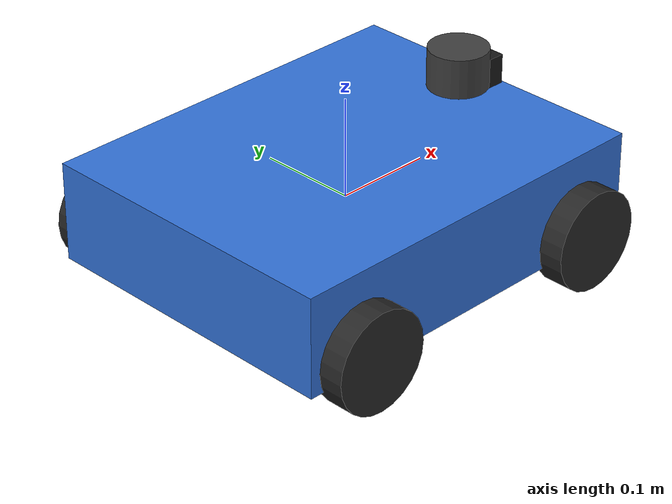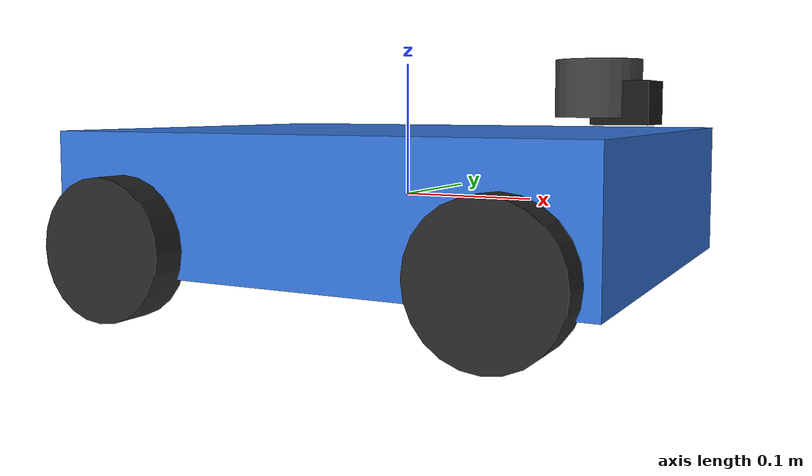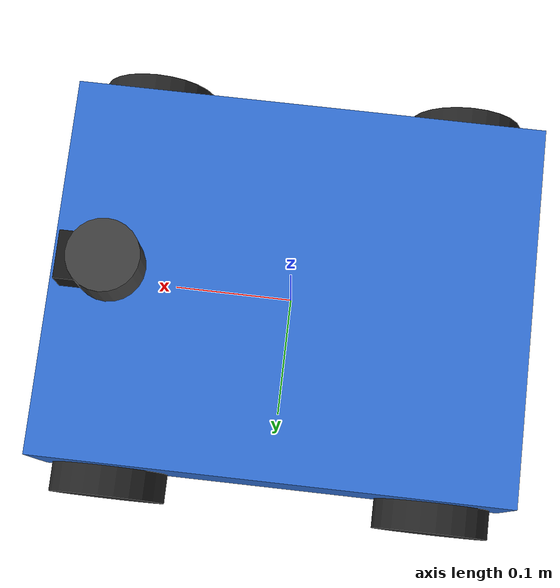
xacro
<?xml version="1.0"?>
<robot xmlns:xacro="http://www.ros.org/wiki/xacro"
       name="my_ros_car">

    <!--                     全局参数                              -->

    <!-- 底盘尺寸 -->
    <xacro:property name="base_length" value="0.40"/>
    <xacro:property name="base_width"  value="0.32"/>
    <xacro:property name="base_height" value="0.10"/>

    <!-- 底盘质量 -->
    <xacro:property name="base_mass" value="8.0"/>

    <!-- 轮子参数 -->
    <xacro:property name="wheel_radius" value="0.05"/>
    <xacro:property name="wheel_width"  value="0.03"/>
    <xacro:property name="wheel_mass"   value="0.40"/>

    <!-- 四驱轮距 -->
    <xacro:property name="wheel_separation" value="0.34"/>
    <xacro:property name="wheel_base" value="0.28"/>

    <!--                     加载模块                              -->

    <!-- 底盘 -->
    <xacro:include filename="$(find my_ros_car)/urdf/robot_base.urdf.xacro"/>

    <!-- 四个驱动轮 -->
    <xacro:include filename="$(find my_ros_car)/urdf/wheels.urdf.xacro"/>

    <!-- 激光、IMU、Camera -->
    <xacro:include filename="$(find my_ros_car)/urdf/sensors.urdf.xacro"/>

    <!-- Gazebo 配置 -->
    <xacro:include filename="$(find my_ros_car)/urdf/gazebo.xacro"/>

    <!-- ros2_control -->
    <xacro:include filename="$(find my_ros_car)/urdf/gazebo_control.xacro"/>

    <!--                    创建机器人                             -->

    <!-- 底盘 -->
    <xacro:robot_base/>

    <!-- 四驱轮 -->
    <xacro:wheels/>

    <!-- 传感器 -->
    <xacro:sensors/>

    <!-- Gazebo 配置 -->
    <xacro:gazebo_config/>

    <!-- ros2_control -->
    <xacro:gazebo_control/>

</robot>

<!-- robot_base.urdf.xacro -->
<robot xmlns:xacro="http://www.ros.org/wiki/xacro">

  <xacro:macro name="robot_base">

    <!-- base_footprint (navigation frame) -->
    <link name="base_footprint"/>

    <!-- base_link (robot body) -->
    <joint name="base_footprint_joint" type="fixed">
      <parent link="base_link"/>
      <child link="base_footprint"/>
      <!-- REP-105 主流: base_link → base_footprint（地面投影） -->
      <origin xyz="0 0 -${wheel_radius}" rpy="0 0 0"/>
    </joint>

    <link name="base_link">

      <!-- Visual -->
      <visual>
        <origin xyz="0 0 0" rpy="0 0 0"/>
        <geometry>
          <box size="${base_length} ${base_width} ${base_height}"/>
        </geometry>
        <material name="Blue">
          <color rgba="0.20 0.45 0.85 1.0"/>
        </material>
      </visual>

      <!-- Collision -->
      <collision>
        <origin xyz="0 0 0" rpy="0 0 0"/>
        <geometry>
          <box size="${base_length} ${base_width} ${base_height}"/>
        </geometry>
      </collision>

      <!-- Inertial -->
      <inertial>
        <origin xyz="0 0 0" rpy="0 0 0"/>
        <mass value="${base_mass}"/>
        <inertia
          ixx="${base_mass*(base_width*base_width+base_height*base_height)/12.0}"
          ixy="0"
          ixz="0"
          iyy="${base_mass*(base_length*base_length+base_height*base_height)/12.0}"
          iyz="0"
          izz="${base_mass*(base_length*base_length+base_width*base_width)/12.0}"/>
      </inertial>

    </link>

  </xacro:macro>

</robot>

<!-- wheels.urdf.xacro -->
<robot xmlns:xacro="http://www.ros.org/wiki/xacro">

  <!--                四驱轮子宏                             -->

  <xacro:macro name="wheel"
               params="prefix x y axis_xyz">

    <!-- ================= Link ================= -->
    <link name="${prefix}_wheel_link">

      <!-- Visual -->
      <visual>
        <origin xyz="0 0 0" rpy="1.57079632679 0 0"/>
        <geometry>
          <cylinder
              radius="${wheel_radius}"
              length="${wheel_width}"/>
        </geometry>
        <material name="Black">
          <color rgba="0.15 0.15 0.15 1.0"/>
        </material>
      </visual>

      <!-- Collision -->
      <collision>
        <origin xyz="0 0 0" rpy="1.57079632679 0 0"/>
        <geometry>
          <cylinder
              radius="${wheel_radius}"
              length="${wheel_width}"/>
        </geometry>
      </collision>

      <!-- Inertial -->
      <inertial>
        <origin xyz="0 0 0" rpy="1.57079632679 0 0"/>
        <mass value="${wheel_mass}"/>
        <!-- 实心圆柱，inertia会随rpy自动计算 -->
        <inertia
            ixx="${wheel_mass*(3*wheel_radius*wheel_radius+wheel_width*wheel_width)/12.0}"
            ixy="0"
            ixz="0"
            iyy="${0.5*wheel_mass*wheel_radius*wheel_radius}"
            iyz="0"
            izz="${wheel_mass*(3*wheel_radius*wheel_radius+wheel_width*wheel_width)/12.0}"/>
      </inertial>

    </link>

    <!-- ================= Joint ================= -->
    <joint
        name="${prefix}_wheel_joint"
        type="continuous">
      <parent link="base_link"/>
      <child link="${prefix}_wheel_link"/>
      <origin xyz="${x} ${y} -0.03" rpy="0 0 0"/>
      <!-- ROS REP-103: X前 Y左 Z上，轮轴沿Y；右轮在Y负侧，axis需反向 -->
      <axis xyz="${axis_xyz}"/>
      <dynamics
          damping="0.1"
          friction="0.0"/>
    </joint>

  </xacro:macro>

  <!--                 四个轮子的封装                        -->

  <xacro:macro name="wheels">
    <!-- 左前：axis +Y -->
    <xacro:wheel
        prefix="left_front"
        x="0.14"
        y="0.17"
        axis_xyz="0 1 0"/>

    <!-- 左后：axis +Y -->
    <xacro:wheel
        prefix="left_rear"
        x="-0.14"
        y="0.17"
        axis_xyz="0 1 0"/>

    <!-- 右前：axis +Y（diff_drive_controller 统一用正向速度，axis 需一致） -->
    <xacro:wheel
        prefix="right_front"
        x="0.14"
        y="-0.17"
        axis_xyz="0 1 0"/>

    <!-- 右后：axis +Y -->
    <xacro:wheel
        prefix="right_rear"
        x="-0.14"
        y="-0.17"
        axis_xyz="0 1 0"/>
  </xacro:macro>

</robot>

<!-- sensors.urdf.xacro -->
<robot xmlns:xacro="http://www.ros.org/wiki/xacro">

  <!--                  Sensors Macro                         -->

  <xacro:macro name="sensors">

    <!--                       LiDAR                            -->

    <link name="laser_link">
      <visual>
        <origin xyz="0 0 0" rpy="0 0 0"/>
        <geometry>
          <cylinder radius="0.03" length="0.04"/>
        </geometry>
        <material name="DarkGray">
          <color rgba="0.25 0.25 0.25 1"/>
        </material>
      </visual>
      <collision>
        <origin xyz="0 0 0"/>
        <geometry>
          <cylinder radius="0.03" length="0.04"/>
        </geometry>
      </collision>
      <inertial>
        <origin xyz="0 0 0"/>
        <mass value="0.10"/>
        <inertia
            ixx="0.00005"
            ixy="0"
            ixz="0"
            iyy="0.00005"
            iyz="0"
            izz="0.00005"/>
      </inertial>
    </link>

    <joint name="laser_joint" type="fixed">
      <parent link="base_link"/>
      <child link="laser_link"/>
      <origin xyz="0.15 0 0.08" rpy="0 0 0"/>
    </joint>

    <!--                         IMU                            -->

    <link name="imu_link">
      <visual>
        <geometry>
          <box size="0.03 0.03 0.01"/>
        </geometry>
        <material name="Blue">
          <color rgba="0 0.3 0.9 1"/>
        </material>
      </visual>
      <collision>
        <geometry>
          <box size="0.03 0.03 0.01"/>
        </geometry>
      </collision>
      <inertial>
        <mass value="0.05"/>
        <origin xyz="0 0 0"/>
        <inertia
            ixx="0.00001"
            ixy="0"
            ixz="0"
            iyy="0.00001"
            iyz="0"
            izz="0.00001"/>
      </inertial>
    </link>

    <joint name="imu_joint" type="fixed">
      <parent link="base_link"/>
      <child link="imu_link"/>
      <origin xyz="0 0 0.03" rpy="0 0 0"/>
    </joint>

    <!--                     RGB Camera                         -->

    <link name="camera_link">
      <visual>
        <geometry>
          <box size="0.04 0.04 0.03"/>
        </geometry>
        <material name="Black">
          <color rgba="0.1 0.1 0.1 1"/>
        </material>
      </visual>
      <collision>
        <geometry>
          <box size="0.04 0.04 0.03"/>
        </geometry>
      </collision>
      <inertial>
        <mass value="0.08"/>
        <origin xyz="0 0 0"/>
        <inertia
            ixx="0.00002"
            ixy="0"
            ixz="0"
            iyy="0.00002"
            iyz="0"
            izz="0.00002"/>
      </inertial>
    </link>

    <joint name="camera_joint" type="fixed">
      <parent link="base_link"/>
      <child link="camera_link"/>
      <origin xyz="0.17 0 0.07" rpy="0 0 0"/>
    </joint>

    <!--               Camera Optical Frame                     -->

    <link name="camera_optical_frame"/>
    <joint name="camera_optical_joint" type="fixed">
      <parent link="camera_link"/>
      <child link="camera_optical_frame"/>
      <!-- REP-103 Camera Optical Frame -->
      <origin xyz="0 0 0" rpy="-1.57079632679 0 -1.57079632679"/>
    </joint>

  </xacro:macro>

</robot>
